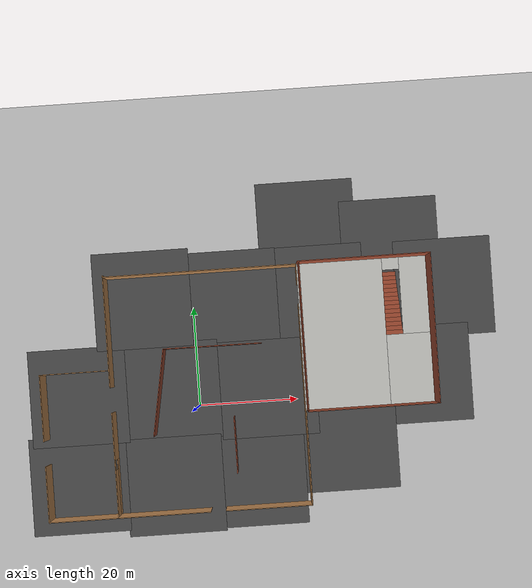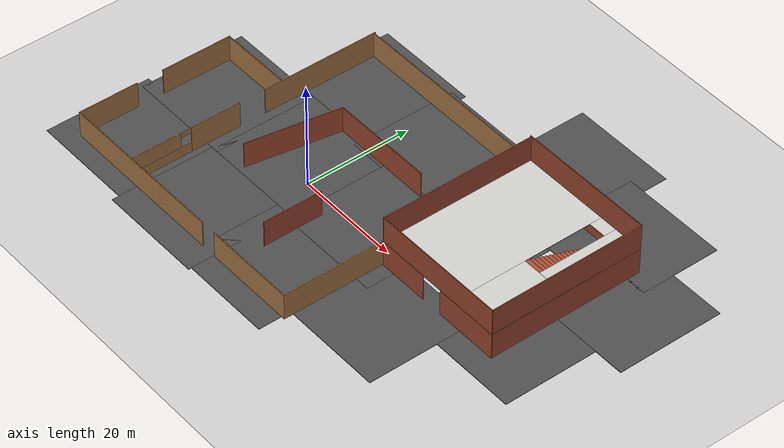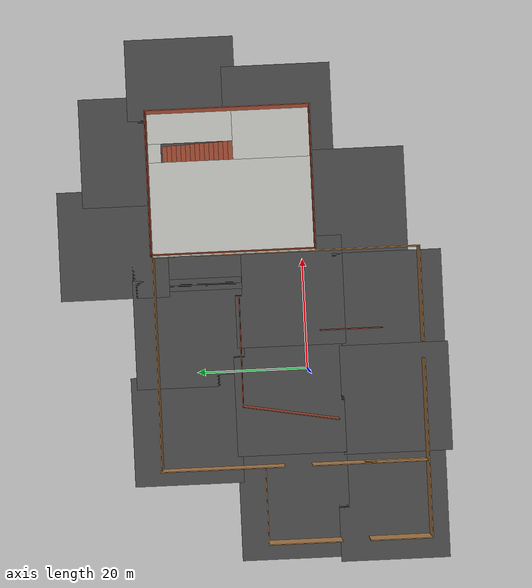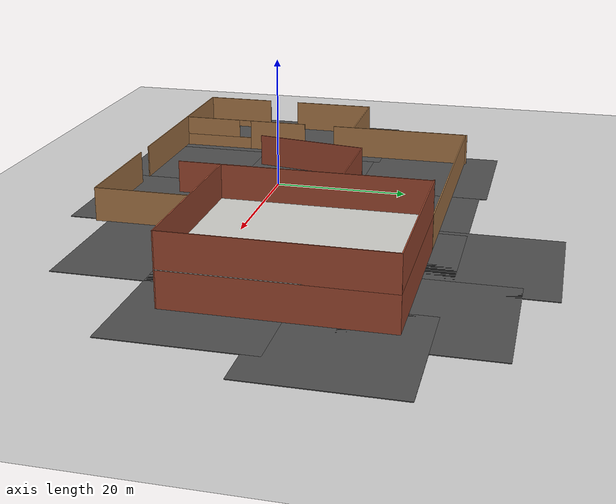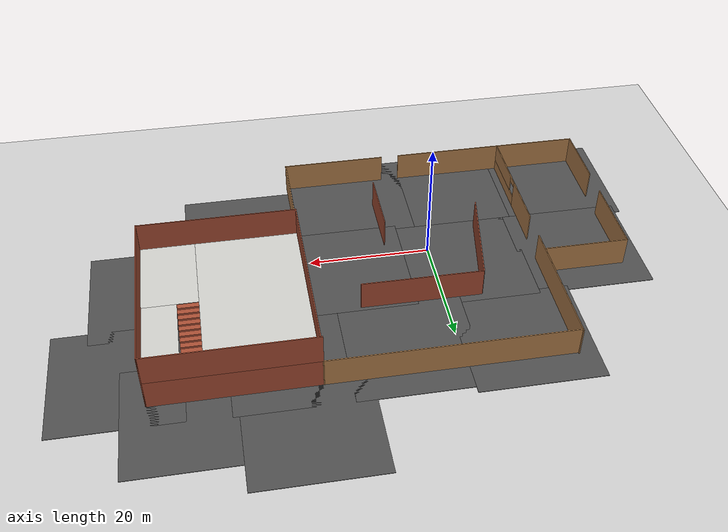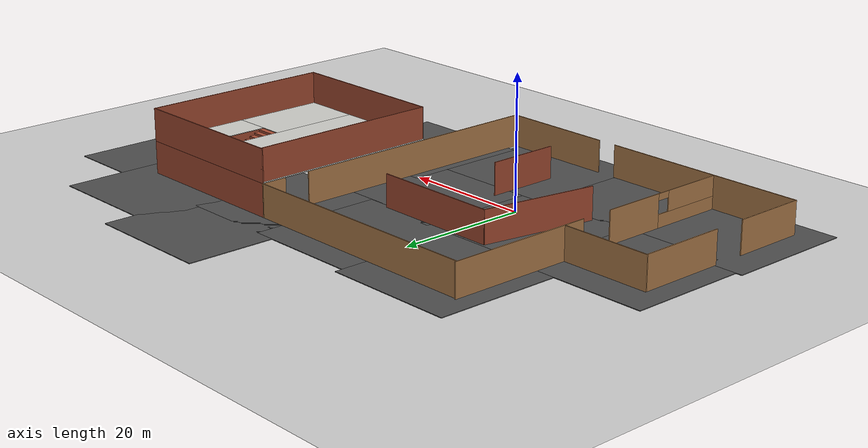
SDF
<sdf version="1.6">
 <world name="default">
  <light name="sun" type="directional">
   <pose>0 0 10 0 -0 0</pose>
   <diffuse>0.8 0.8 0.8 1</diffuse>
   <specular>0.2 0.2 0.2 1</specular>
   <attenuation>
    <range>1000</range>
    <constant>0.9</constant>
    <linear>0.01</linear>
    <quadratic>0.001</quadratic>
   </attenuation>
   <direction>-0.5 0.1 -0.9</direction>
  </light>
  <model name="ground_plane">
   <static>1</static>
   <link name="link">
    <collision name="collision">
     <geometry><plane><normal>0 0 1</normal><size>100 100</size></plane></geometry>
     <surface>
      <contact><collide_bitmask>65535</collide_bitmask></contact>
      <friction><ode><mu>100</mu><mu2>50</mu2></ode></friction>
     </surface>
    </collision>
    <visual name="visual">
     <cast_shadows>0</cast_shadows>
     <geometry><plane><normal>0 0 1</normal><size>100 100</size></plane></geometry>
     <material>
      <script><uri>file://media/materials/scripts/gazebo.material</uri><name>Gazebo/Grey</name></script>
     </material>
    </visual>
   </link>
  </model>
  <gravity>0 0 -9.8</gravity>
  <magnetic_field>6e-06 2.3e-05 -4.2e-05</magnetic_field>
  <atmosphere type="adiabatic"/>
  <physics name="default_physics" default="0" type="ode">
   <max_step_size>0.001</max_step_size>
   <real_time_factor>1</real_time_factor>
   <real_time_update_rate>1000</real_time_update_rate>
  </physics>
  <scene><ambient>0.4 0.4 0.4 1</ambient><background>0.7 0.7 0.7 1</background><shadows>1</shadows></scene>
  <audio><device>default</device></audio>
  <spherical_coordinates>
   <surface_model>EARTH_WGS84</surface_model>
   <latitude_deg>0</latitude_deg>
   <longitude_deg>0</longitude_deg>
   <elevation>0</elevation>
   <heading_deg>0</heading_deg>
  </spherical_coordinates>
  <model name="indoor_world_hoijo_v0.1">
   <pose>7.97263 3.142 0 0 -0 0</pose>
   <link name="Floor_3">
    <pose>26.425 9.3755 5 0 -0 0</pose>
    <visual name="Floor_3_Visual_0">
     <pose>-4.46641 0 0.05 0 -0 0</pose>
     <geometry><box><size>17.0672 29.5 0.1</size></box></geometry>
     <material>
      <script><uri>file://media/materials/scripts/gazebo.material</uri><name>Gazebo/CeilingTiled</name></script>
      <ambient>1 1 1 1</ambient>
     </material>
     <meta><layer>1</layer></meta>
    </visual>
    <collision name="Floor_3_Collision_0">
     <geometry><box><size>17.0672 29.5 0.1</size></box></geometry>
     <pose>-4.46641 0 0.05 0 -0 0</pose>
    </collision>
    <visual name="Floor_3_Visual_1">
     <pose>8.53359 -7.72437 0.05 0 -0 0</pose>
     <geometry><box><size>8.93283 14.0513 0.1</size></box></geometry>
     <material>
      <script><uri>file://media/materials/scripts/gazebo.material</uri><name>Gazebo/CeilingTiled</name></script>
      <ambient>1 1 1 1</ambient>
     </material>
     <meta><layer>1</layer></meta>
    </visual>
    <collision name="Floor_3_Collision_1">
     <geometry><box><size>8.93283 14.0513 0.1</size></box></geometry>
     <pose>8.53359 -7.72437 0.05 0 -0 0</pose>
    </collision>
    <visual name="Floor_3_Visual_2">
     <pose>10.2151 7.02563 0.05 0 -0 0</pose>
     <geometry><box><size>5.56983 15.4487 0.1</size></box></geometry>
     <material>
      <script><uri>file://media/materials/scripts/gazebo.material</uri><name>Gazebo/CeilingTiled</name></script>
      <ambient>1 1 1 1</ambient>
     </material>
     <meta><layer>1</layer></meta>
    </visual>
    <collision name="Floor_3_Collision_2">
     <geometry><box><size>5.56983 15.4487 0.1</size></box></geometry>
     <pose>10.2151 7.02563 0.05 0 -0 0</pose>
    </collision>
    <visual name="Floor_3_Visual_3">
     <pose>5.74867 13.5026 0.05 0 -0 0</pose>
     <geometry><box><size>3.363 2.49475 0.1</size></box></geometry>
     <material>
      <script><uri>file://media/materials/scripts/gazebo.material</uri><name>Gazebo/CeilingTiled</name></script>
      <ambient>1 1 1 1</ambient>
     </material>
     <meta><layer>1</layer></meta>
    </visual>
    <collision name="Floor_3_Collision_3">
     <geometry><box><size>3.363 2.49475 0.1</size></box></geometry>
     <pose>5.74867 13.5026 0.05 0 -0 0</pose>
    </collision>
   </link>
   <link name="Stairs_1">
    <visual name="Stairs_1_Visual_0">
     <pose>32.1737 21.199 0.166667 0 -0 0</pose>
     <geometry><box><size>3.363 0.8636 0.333333</size></box></geometry>
     <material>
      <script><uri>file://media/materials/scripts/gazebo.material</uri><name>Gazebo/Bricks</name></script>
      <ambient>1 1 1 1</ambient>
     </material>
     <meta><layer>0</layer></meta>
    </visual>
    <collision name="Stairs_1_Collision_0">
     <geometry><box><size>3.363 0.8636 0.333333</size></box></geometry>
     <pose>32.1737 21.199 0.166667 0 -0 0</pose>
    </collision>
    <visual name="Stairs_1_Visual_1">
     <pose>32.1737 20.3354 0.5 0 -0 0</pose>
     <geometry><box><size>3.363 0.8636 0.333333</size></box></geometry>
     <material>
      <script><uri>file://media/materials/scripts/gazebo.material</uri><name>Gazebo/Bricks</name></script>
      <ambient>1 1 1 1</ambient>
     </material>
     <meta><layer>0</layer></meta>
    </visual>
    <collision name="Stairs_1_Collision_1">
     <geometry><box><size>3.363 0.8636 0.333333</size></box></geometry>
     <pose>32.1737 20.3354 0.5 0 -0 0</pose>
    </collision>
    <visual name="Stairs_1_Visual_2">
     <pose>32.1737 19.4718 0.833333 0 -0 0</pose>
     <geometry><box><size>3.363 0.8636 0.333333</size></box></geometry>
     <material>
      <script><uri>file://media/materials/scripts/gazebo.material</uri><name>Gazebo/Bricks</name></script>
      <ambient>1 1 1 1</ambient>
     </material>
     <meta><layer>0</layer></meta>
    </visual>
    <collision name="Stairs_1_Collision_2">
     <geometry><box><size>3.363 0.8636 0.333333</size></box></geometry>
     <pose>32.1737 19.4718 0.833333 0 -0 0</pose>
    </collision>
    <visual name="Stairs_1_Visual_3">
     <pose>32.1737 18.6082 1.16667 0 -0 0</pose>
     <geometry><box><size>3.363 0.8636 0.333333</size></box></geometry>
     <material>
      <script><uri>file://media/materials/scripts/gazebo.material</uri><name>Gazebo/Bricks</name></script>
      <ambient>1 1 1 1</ambient>
     </material>
     <meta><layer>0</layer></meta>
    </visual>
    <collision name="Stairs_1_Collision_3">
     <geometry><box><size>3.363 0.8636 0.333333</size></box></geometry>
     <pose>32.1737 18.6082 1.16667 0 -0 0</pose>
    </collision>
    <visual name="Stairs_1_Visual_4">
     <pose>32.1737 17.7446 1.5 0 -0 0</pose>
     <geometry><box><size>3.363 0.8636 0.333333</size></box></geometry>
     <material>
      <script><uri>file://media/materials/scripts/gazebo.material</uri><name>Gazebo/Bricks</name></script>
      <ambient>1 1 1 1</ambient>
     </material>
     <meta><layer>0</layer></meta>
    </visual>
    <collision name="Stairs_1_Collision_4">
     <geometry><box><size>3.363 0.8636 0.333333</size></box></geometry>
     <pose>32.1737 17.7446 1.5 0 -0 0</pose>
    </collision>
    <visual name="Stairs_1_Visual_5">
     <pose>32.1737 16.881 1.83333 0 -0 0</pose>
     <geometry><box><size>3.363 0.8636 0.333333</size></box></geometry>
     <material>
      <script><uri>file://media/materials/scripts/gazebo.material</uri><name>Gazebo/Bricks</name></script>
      <ambient>1 1 1 1</ambient>
     </material>
     <meta><layer>0</layer></meta>
    </visual>
    <collision name="Stairs_1_Collision_5">
     <geometry><box><size>3.363 0.8636 0.333333</size></box></geometry>
     <pose>32.1737 16.881 1.83333 0 -0 0</pose>
    </collision>
    <visual name="Stairs_1_Visual_6">
     <pose>32.1737 16.0174 2.16667 0 -0 0</pose>
     <geometry><box><size>3.363 0.8636 0.333333</size></box></geometry>
     <material>
      <script><uri>file://media/materials/scripts/gazebo.material</uri><name>Gazebo/Bricks</name></script>
      <ambient>1 1 1 1</ambient>
     </material>
     <meta><layer>0</layer></meta>
    </visual>
    <collision name="Stairs_1_Collision_6">
     <geometry><box><size>3.363 0.8636 0.333333</size></box></geometry>
     <pose>32.1737 16.0174 2.16667 0 -0 0</pose>
    </collision>
    <visual name="Stairs_1_Visual_7">
     <pose>32.1737 15.1538 2.5 0 -0 0</pose>
     <geometry><box><size>3.363 0.8636 0.333333</size></box></geometry>
     <material>
      <script><uri>file://media/materials/scripts/gazebo.material</uri><name>Gazebo/Bricks</name></script>
      <ambient>1 1 1 1</ambient>
     </material>
     <meta><layer>0</layer></meta>
    </visual>
    <collision name="Stairs_1_Collision_7">
     <geometry><box><size>3.363 0.8636 0.333333</size></box></geometry>
     <pose>32.1737 15.1538 2.5 0 -0 0</pose>
    </collision>
    <visual name="Stairs_1_Visual_8">
     <pose>32.1737 14.2902 2.83333 0 -0 0</pose>
     <geometry><box><size>3.363 0.8636 0.333333</size></box></geometry>
     <material>
      <script><uri>file://media/materials/scripts/gazebo.material</uri><name>Gazebo/Bricks</name></script>
      <ambient>1 1 1 1</ambient>
     </material>
     <meta><layer>0</layer></meta>
    </visual>
    <collision name="Stairs_1_Collision_8">
     <geometry><box><size>3.363 0.8636 0.333333</size></box></geometry>
     <pose>32.1737 14.2902 2.83333 0 -0 0</pose>
    </collision>
    <visual name="Stairs_1_Visual_9">
     <pose>32.1737 13.4266 3.16667 0 -0 0</pose>
     <geometry><box><size>3.363 0.8636 0.333333</size></box></geometry>
     <material>
      <script><uri>file://media/materials/scripts/gazebo.material</uri><name>Gazebo/Bricks</name></script>
      <ambient>1 1 1 1</ambient>
     </material>
     <meta><layer>0</layer></meta>
    </visual>
    <collision name="Stairs_1_Collision_9">
     <geometry><box><size>3.363 0.8636 0.333333</size></box></geometry>
     <pose>32.1737 13.4266 3.16667 0 -0 0</pose>
    </collision>
    <visual name="Stairs_1_Visual_10">
     <pose>32.1737 12.563 3.5 0 -0 0</pose>
     <geometry><box><size>3.363 0.8636 0.333333</size></box></geometry>
     <material>
      <script><uri>file://media/materials/scripts/gazebo.material</uri><name>Gazebo/Bricks</name></script>
      <ambient>1 1 1 1</ambient>
     </material>
     <meta><layer>0</layer></meta>
    </visual>
    <collision name="Stairs_1_Collision_10">
     <geometry><box><size>3.363 0.8636 0.333333</size></box></geometry>
     <pose>32.1737 12.563 3.5 0 -0 0</pose>
    </collision>
    <visual name="Stairs_1_Visual_11">
     <pose>32.1737 11.6994 3.83333 0 -0 0</pose>
     <geometry><box><size>3.363 0.8636 0.333333</size></box></geometry>
     <material>
      <script><uri>file://media/materials/scripts/gazebo.material</uri><name>Gazebo/Bricks</name></script>
      <ambient>1 1 1 1</ambient>
     </material>
     <meta><layer>0</layer></meta>
    </visual>
    <collision name="Stairs_1_Collision_11">
     <geometry><box><size>3.363 0.8636 0.333333</size></box></geometry>
     <pose>32.1737 11.6994 3.83333 0 -0 0</pose>
    </collision>
    <visual name="Stairs_1_Visual_12">
     <pose>32.1737 10.8358 4.16667 0 -0 0</pose>
     <geometry><box><size>3.363 0.8636 0.333333</size></box></geometry>
     <material>
      <script><uri>file://media/materials/scripts/gazebo.material</uri><name>Gazebo/Bricks</name></script>
      <ambient>1 1 1 1</ambient>
     </material>
     <meta><layer>0</layer></meta>
    </visual>
    <collision name="Stairs_1_Collision_12">
     <geometry><box><size>3.363 0.8636 0.333333</size></box></geometry>
     <pose>32.1737 10.8358 4.16667 0 -0 0</pose>
    </collision>
    <visual name="Stairs_1_Visual_13">
     <pose>32.1737 9.97215 4.5 0 -0 0</pose>
     <geometry><box><size>3.363 0.8636 0.333333</size></box></geometry>
     <material>
      <script><uri>file://media/materials/scripts/gazebo.material</uri><name>Gazebo/Bricks</name></script>
      <ambient>1 1 1 1</ambient>
     </material>
     <meta><layer>0</layer></meta>
    </visual>
    <collision name="Stairs_1_Collision_13">
     <geometry><box><size>3.363 0.8636 0.333333</size></box></geometry>
     <pose>32.1737 9.97215 4.5 0 -0 0</pose>
    </collision>
    <visual name="Stairs_1_Visual_14">
     <pose>32.1737 9.10855 4.83333 0 -0 0</pose>
     <geometry><box><size>3.363 0.8636 0.333333</size></box></geometry>
     <material>
      <script><uri>file://media/materials/scripts/gazebo.material</uri><name>Gazebo/Bricks</name></script>
      <ambient>1 1 1 1</ambient>
     </material>
     <meta><layer>0</layer></meta>
    </visual>
    <collision name="Stairs_1_Collision_14">
     <geometry><box><size>3.363 0.8636 0.333333</size></box></geometry>
     <pose>32.1737 9.10855 4.83333 0 -0 0</pose>
    </collision>
   </link>
   <link name="Wall_31">
    <collision name="Wall_31_Collision">
     <geometry><box><size>14 0.15 5</size></box></geometry>
     <pose>0 0 2.5 0 -0 0</pose>
    </collision>
    <visual name="Wall_31_Visual">
     <pose>0 0 2.5 0 -0 0</pose>
     <geometry><box><size>14 0.15 5</size></box></geometry>
     <material>
      <script><uri>file://media/materials/scripts/gazebo.material</uri><name>Gazebo/Wood</name></script>
      <ambient>1 1 1 1</ambient>
     </material>
     <meta><layer>0</layer></meta>
    </visual>
    <pose>-32.425 5.3005 0 0 -0 3.14159</pose>
   </link>
   <link name="Wall_32">
    <pose>-39.35 -9.4995 0 0 -0 -1.5708</pose>
    <visual name="Wall_32_Visual_0">
     <pose>-8.16485 0 2.5 0 -0 0</pose>
     <geometry><box><size>13.4203 0.15 5</size></box></geometry>
     <material>
      <script><uri>file://media/materials/scripts/gazebo.material</uri><name>Gazebo/Wood</name></script>
      <ambient>1 1 1 1</ambient>
     </material>
     <meta><layer>0</layer></meta>
    </visual>
    <collision name="Wall_32_Collision_0">
     <geometry><box><size>13.4203 0.15 5</size></box></geometry>
     <pose>-8.16485 0 2.5 0 -0 0</pose>
    </collision>
    <visual name="Wall_32_Visual_1">
     <pose>9.21015 0 2.5 0 -0 0</pose>
     <geometry><box><size>11.3297 0.15 5</size></box></geometry>
     <material>
      <script><uri>file://media/materials/scripts/gazebo.material</uri><name>Gazebo/Wood</name></script>
      <ambient>1 1 1 1</ambient>
     </material>
     <meta><layer>0</layer></meta>
    </visual>
    <collision name="Wall_32_Collision_1">
     <geometry><box><size>11.3297 0.15 5</size></box></geometry>
     <pose>9.21015 0 2.5 0 -0 0</pose>
    </collision>
   </link>
   <link name="Wall_33">
    <pose>-12.925 -24.2995 0 0 -0 0</pose>
    <visual name="Wall_33_Visual_0">
     <pose>-10.2414 0 2.5 0 -0 0</pose>
     <geometry><box><size>32.5172 0.15 5</size></box></geometry>
     <material>
      <script><uri>file://media/materials/scripts/gazebo.material</uri><name>Gazebo/Wood</name></script>
      <ambient>1 1 1 1</ambient>
     </material>
     <meta><layer>0</layer></meta>
    </visual>
    <collision name="Wall_33_Collision_0">
     <geometry><box><size>32.5172 0.15 5</size></box></geometry>
     <pose>-10.2414 0 2.5 0 -0 0</pose>
    </collision>
    <visual name="Wall_33_Visual_1">
     <pose>17.7586 0 2.5 0 -0 0</pose>
     <geometry><box><size>17.4828 0.15 5</size></box></geometry>
     <material>
      <script><uri>file://media/materials/scripts/gazebo.material</uri><name>Gazebo/Wood</name></script>
      <ambient>1 1 1 1</ambient>
     </material>
     <meta><layer>0</layer></meta>
    </visual>
    <collision name="Wall_33_Collision_1">
     <geometry><box><size>17.4828 0.15 5</size></box></geometry>
     <pose>17.7586 0 2.5 0 -0 0</pose>
    </collision>
   </link>
   <link name="Wall_34">
    <pose>13.5 -0.1245 0 0 -0 1.5708</pose>
    <visual name="Wall_34_Visual_0">
     <pose>-3.94993 0 2.5 0 -0 0</pose>
     <geometry><box><size>40.6001 0.15 5</size></box></geometry>
     <material>
      <script><uri>file://media/materials/scripts/gazebo.material</uri><name>Gazebo/Wood</name></script>
      <ambient>1 1 1 1</ambient>
     </material>
     <meta><layer>0</layer></meta>
    </visual>
    <collision name="Wall_34_Collision_0">
     <geometry><box><size>40.6001 0.15 5</size></box></geometry>
     <pose>-3.94993 0 2.5 0 -0 0</pose>
    </collision>
    <visual name="Wall_34_Visual_1">
     <pose>22.3001 0 2.5 0 -0 0</pose>
     <geometry><box><size>3.89986 0.15 5</size></box></geometry>
     <material>
      <script><uri>file://media/materials/scripts/gazebo.material</uri><name>Gazebo/Wood</name></script>
      <ambient>1 1 1 1</ambient>
     </material>
     <meta><layer>0</layer></meta>
    </visual>
    <collision name="Wall_34_Collision_1">
     <geometry><box><size>3.89986 0.15 5</size></box></geometry>
     <pose>22.3001 0 2.5 0 -0 0</pose>
    </collision>
   </link>
   <link name="Wall_35">
    <collision name="Wall_35_Collision">
     <geometry><box><size>39 0.15 5</size></box></geometry>
     <pose>0 0 2.5 0 -0 0</pose>
    </collision>
    <visual name="Wall_35_Visual">
     <pose>0 0 2.5 0 -0 0</pose>
     <geometry><box><size>39 0.15 5</size></box></geometry>
     <material>
      <script><uri>file://media/materials/scripts/gazebo.material</uri><name>Gazebo/Wood</name></script>
      <ambient>1 1 1 1</ambient>
     </material>
     <meta><layer>0</layer></meta>
    </visual>
    <pose>-5.925 24.0505 0 0 -0 3.14159</pose>
   </link>
   <link name="Wall_55">
    <pose>-25.412 0.1245 0 0 -0 -1.5708</pose>
    <visual name="Wall_55_Visual_0">
     <pose>-12.9783 0 2.5 0 -0 0</pose>
     <geometry><box><size>22.5434 0.15 5</size></box></geometry>
     <material>
      <script><uri>file://media/materials/scripts/gazebo.material</uri><name>Gazebo/Wood</name></script>
      <ambient>1 1 1 1</ambient>
     </material>
     <meta><layer>0</layer></meta>
    </visual>
    <collision name="Wall_55_Collision_0">
     <geometry><box><size>22.5434 0.15 5</size></box></geometry>
     <pose>-12.9783 0 2.5 0 -0 0</pose>
    </collision>
    <visual name="Wall_55_Visual_1">
     <pose>8.08698 0 2.5 0 -0 0</pose>
     <geometry><box><size>9.58726 0.15 5</size></box></geometry>
     <material>
      <script><uri>file://media/materials/scripts/gazebo.material</uri><name>Gazebo/Wood</name></script>
      <ambient>1 1 1 1</ambient>
     </material>
     <meta><layer>0</layer></meta>
    </visual>
    <collision name="Wall_55_Collision_1">
     <geometry><box><size>9.58726 0.15 5</size></box></geometry>
     <pose>8.08698 0 2.5 0 -0 0</pose>
    </collision>
    <visual name="Wall_55_Visual_2">
     <pose>18.5653 0 1 0 -0 0</pose>
     <geometry><box><size>11.3694 0.15 2</size></box></geometry>
     <material>
      <script><uri>file://media/materials/scripts/gazebo.material</uri><name>Gazebo/Wood</name></script>
      <ambient>1 1 1 1</ambient>
     </material>
     <meta><layer>0</layer></meta>
    </visual>
    <collision name="Wall_55_Collision_2">
     <geometry><box><size>11.3694 0.15 2</size></box></geometry>
     <pose>18.5653 0 1 0 -0 0</pose>
    </collision>
    <visual name="Wall_55_Visual_3">
     <pose>19.5653 0 3.5 0 -0 0</pose>
     <geometry><box><size>9.36939 0.15 3</size></box></geometry>
     <material>
      <script><uri>file://media/materials/scripts/gazebo.material</uri><name>Gazebo/Wood</name></script>
      <ambient>1 1 1 1</ambient>
     </material>
     <meta><layer>0</layer></meta>
    </visual>
    <collision name="Wall_55_Collision_3">
     <geometry><box><size>9.36939 0.15 3</size></box></geometry>
     <pose>19.5653 0 3.5 0 -0 0</pose>
    </collision>
    <visual name="Wall_55_Visual_4">
     <pose>13.8806 0 4.5 0 -0 0</pose>
     <geometry><box><size>2 0.15 1</size></box></geometry>
     <material>
      <script><uri>file://media/materials/scripts/gazebo.material</uri><name>Gazebo/Wood</name></script>
      <ambient>1 1 1 1</ambient>
     </material>
     <meta><layer>0</layer></meta>
    </visual>
    <collision name="Wall_55_Collision_4">
     <geometry><box><size>2 0.15 1</size></box></geometry>
     <pose>13.8806 0 4.5 0 -0 0</pose>
    </collision>
   </link>
   <link name="Wall_57">
    <collision name="Wall_57_Collision">
     <geometry><box><size>26 0.15 5</size></box></geometry>
     <pose>0 0 2.5 0 -0 0</pose>
    </collision>
    <visual name="Wall_57_Visual">
     <pose>0 0 2.5 0 -0 0</pose>
     <geometry><box><size>26 0.15 5</size></box></geometry>
     <material>
      <script><uri>file://media/materials/scripts/gazebo.material</uri><name>Gazebo/Bricks</name></script>
      <ambient>1 1 1 1</ambient>
     </material>
     <meta><layer>0</layer></meta>
    </visual>
    <pose>26.425 24.0505 0 0 -0 0</pose>
   </link>
   <link name="Wall_58">
    <collision name="Wall_58_Collision">
     <geometry><box><size>29.5 0.15 5</size></box></geometry>
     <pose>0 0 2.5 0 -0 0</pose>
    </collision>
    <visual name="Wall_58_Visual">
     <pose>0 0 2.5 0 -0 0</pose>
     <geometry><box><size>29.5 0.15 5</size></box></geometry>
     <material>
      <script><uri>file://media/materials/scripts/gazebo.material</uri><name>Gazebo/Bricks</name></script>
      <ambient>1 1 1 1</ambient>
     </material>
     <meta><layer>0</layer></meta>
    </visual>
    <pose>39.35 9.3755 0 0 -0 -1.5708</pose>
   </link>
   <link name="Wall_59">
    <pose>26.55 -5.2995 0 0 -0 3.14159</pose>
    <visual name="Wall_59_Visual_0">
     <pose>-6.81937 0 2.5 0 -0 0</pose>
     <geometry><box><size>12.1113 0.15 5</size></box></geometry>
     <material>
      <script><uri>file://media/materials/scripts/gazebo.material</uri><name>Gazebo/Bricks</name></script>
      <ambient>1 1 1 1</ambient>
     </material>
     <meta><layer>0</layer></meta>
    </visual>
    <collision name="Wall_59_Collision_0">
     <geometry><box><size>12.1113 0.15 5</size></box></geometry>
     <pose>-6.81937 0 2.5 0 -0 0</pose>
    </collision>
    <visual name="Wall_59_Visual_1">
     <pose>8.05563 0 2.5 0 -0 0</pose>
     <geometry><box><size>9.63875 0.15 5</size></box></geometry>
     <material>
      <script><uri>file://media/materials/scripts/gazebo.material</uri><name>Gazebo/Bricks</name></script>
      <ambient>1 1 1 1</ambient>
     </material>
     <meta><layer>0</layer></meta>
    </visual>
    <collision name="Wall_59_Collision_1">
     <geometry><box><size>9.63875 0.15 5</size></box></geometry>
     <pose>8.05563 0 2.5 0 -0 0</pose>
    </collision>
   </link>
   <link name="Wall_67">
    <collision name="Wall_67_Collision">
     <geometry><box><size>26 0.15 5</size></box></geometry>
     <pose>0 0 2.5 0 -0 0</pose>
    </collision>
    <visual name="Wall_67_Visual">
     <pose>0 0 2.5 0 -0 0</pose>
     <geometry><box><size>26 0.15 5</size></box></geometry>
     <material>
      <script><uri>file://media/materials/scripts/gazebo.material</uri><name>Gazebo/Bricks</name></script>
      <ambient>1 1 1 1</ambient>
     </material>
     <meta><layer>1</layer></meta>
    </visual>
    <pose>26.425 24.0505 5 0 -0 0</pose>
   </link>
   <link name="Wall_68">
    <collision name="Wall_68_Collision">
     <geometry><box><size>29.5 0.15 5</size></box></geometry>
     <pose>0 0 2.5 0 -0 0</pose>
    </collision>
    <visual name="Wall_68_Visual">
     <pose>0 0 2.5 0 -0 0</pose>
     <geometry><box><size>29.5 0.15 5</size></box></geometry>
     <material>
      <script><uri>file://media/materials/scripts/gazebo.material</uri><name>Gazebo/Bricks</name></script>
      <ambient>1 1 1 1</ambient>
     </material>
     <meta><layer>1</layer></meta>
    </visual>
    <pose>39.35 9.3755 5 0 -0 -1.5708</pose>
   </link>
   <link name="Wall_69">
    <collision name="Wall_69_Collision">
     <geometry><box><size>25.75 0.15 5</size></box></geometry>
     <pose>0 0 2.5 0 -0 0</pose>
    </collision>
    <visual name="Wall_69_Visual">
     <pose>0 0 2.5 0 -0 0</pose>
     <geometry><box><size>25.75 0.15 5</size></box></geometry>
     <material>
      <script><uri>file://media/materials/scripts/gazebo.material</uri><name>Gazebo/Bricks</name></script>
      <ambient>1 1 1 1</ambient>
     </material>
     <meta><layer>1</layer></meta>
    </visual>
    <pose>26.55 -5.2995 5 0 -0 3.14159</pose>
   </link>
   <link name="Wall_70">
    <collision name="Wall_70_Collision">
     <geometry><box><size>29.5 0.15 5</size></box></geometry>
     <pose>0 0 2.5 0 -0 0</pose>
    </collision>
    <visual name="Wall_70_Visual">
     <pose>0 0 2.5 0 -0 0</pose>
     <geometry><box><size>29.5 0.15 5</size></box></geometry>
     <material>
      <script><uri>file://media/materials/scripts/gazebo.material</uri><name>Gazebo/Bricks</name></script>
      <ambient>1 1 1 1</ambient>
     </material>
     <meta><layer>1</layer></meta>
    </visual>
    <pose>13.75 9.3755 5 0 -0 1.5708</pose>
   </link>
   <static>1</static>
  </model>
  <model name="asphalt_plane">
   <static>1</static>
   <link name="link">
    <collision name="collision"><geometry><box><size>20 20 0.1</size></box></geometry></collision>
    <visual name="visual">
     <cast_shadows>0</cast_shadows>
     <geometry><box><size>20 20 0.1</size></box></geometry>
     <material>
      <script>
       <uri>model://asphalt_plane/materials/scripts</uri>
       <uri>model://asphalt_plane/materials/textures</uri>
       <name>vrc/asphalt</name>
      </script>
     </material>
    </visual>
   </link>
   <pose>-10.4567 22.4779 0 0 -0 0</pose>
  </model>
  <model name="asphalt_plane_clone">
   <static>1</static>
   <link name="link">
    <collision name="collision"><geometry><box><size>20 20 0.1</size></box></geometry></collision>
    <visual name="visual">
     <cast_shadows>0</cast_shadows>
     <geometry><box><size>20 20 0.1</size></box></geometry>
     <material>
      <script>
       <uri>model://asphalt_plane/materials/scripts</uri>
       <uri>model://asphalt_plane/materials/textures</uri>
       <name>vrc/asphalt</name>
      </script>
     </material>
    </visual>
   </link>
   <pose>-24.8757 3.39741 0 0 -0 0</pose>
  </model>
  <model name="asphalt_plane_clone_0">
   <static>1</static>
   <link name="link">
    <collision name="collision"><geometry><box><size>20 20 0.1</size></box></geometry></collision>
    <visual name="visual">
     <cast_shadows>0</cast_shadows>
     <geometry><box><size>20 20 0.1</size></box></geometry>
     <material>
      <script>
       <uri>model://asphalt_plane/materials/scripts</uri>
       <uri>model://asphalt_plane/materials/textures</uri>
       <name>vrc/asphalt</name>
      </script>
     </material>
    </visual>
   </link>
   <pose>-25.8155 -14.7047 0 0 -0 0</pose>
  </model>
  <model name="asphalt_plane_clone_1">
   <static>1</static>
   <link name="link">
    <collision name="collision"><geometry><box><size>20 20 0.1</size></box></geometry></collision>
    <visual name="visual">
     <cast_shadows>0</cast_shadows>
     <geometry><box><size>20 20 0.1</size></box></geometry>
     <material>
      <script>
       <uri>model://asphalt_plane/materials/scripts</uri>
       <uri>model://asphalt_plane/materials/textures</uri>
       <name>vrc/asphalt</name>
      </script>
     </material>
    </visual>
   </link>
   <pose>-6.18066 -16.037 0 0 -0 0</pose>
  </model>
  <model name="asphalt_plane_clone_2">
   <static>1</static>
   <link name="link">
    <collision name="collision"><geometry><box><size>20 20 0.1</size></box></geometry></collision>
    <visual name="visual">
     <cast_shadows>0</cast_shadows>
     <geometry><box><size>20 20 0.1</size></box></geometry>
     <material>
      <script>
       <uri>model://asphalt_plane/materials/scripts</uri>
       <uri>model://asphalt_plane/materials/textures</uri>
       <name>vrc/asphalt</name>
      </script>
     </material>
    </visual>
   </link>
   <pose>-5.70974 3.43135 0 0 -0 0</pose>
  </model>
  <model name="asphalt_plane_clone_3">
   <static>1</static>
   <link name="link">
    <collision name="collision"><geometry><box><size>20 20 0.1</size></box></geometry></collision>
    <visual name="visual">
     <cast_shadows>0</cast_shadows>
     <geometry><box><size>20 20 0.1</size></box></geometry>
     <material>
      <script>
       <uri>model://asphalt_plane/materials/scripts</uri>
       <uri>model://asphalt_plane/materials/textures</uri>
       <name>vrc/asphalt</name>
      </script>
     </material>
    </visual>
   </link>
   <pose>14.2018 2.65278 0 0 -0 0</pose>
  </model>
  <model name="asphalt_plane_clone_4">
   <static>1</static>
   <link name="link">
    <collision name="collision"><geometry><box><size>20 20 0.1</size></box></geometry></collision>
    <visual name="visual">
     <cast_shadows>0</cast_shadows>
     <geometry><box><size>20 20 0.1</size></box></geometry>
     <material>
      <script>
       <uri>model://asphalt_plane/materials/scripts</uri>
       <uri>model://asphalt_plane/materials/textures</uri>
       <name>vrc/asphalt</name>
      </script>
     </material>
    </visual>
   </link>
   <pose>7.37233 21.387 0 0 -0 0</pose>
  </model>
  <model name="asphalt_plane_clone_5">
   <static>1</static>
   <link name="link">
    <collision name="collision"><geometry><box><size>20 20 0.1</size></box></geometry></collision>
    <visual name="visual">
     <cast_shadows>0</cast_shadows>
     <geometry><box><size>20 20 0.1</size></box></geometry>
     <material>
      <script>
       <uri>model://asphalt_plane/materials/scripts</uri>
       <uri>model://asphalt_plane/materials/textures</uri>
       <name>vrc/asphalt</name>
      </script>
     </material>
    </visual>
   </link>
   <pose>25.1556 21.2922 0 0 -0 0</pose>
  </model>
  <model name="asphalt_plane_clone_6">
   <static>1</static>
   <link name="link">
    <collision name="collision"><geometry><box><size>20 20 0.1</size></box></geometry></collision>
    <visual name="visual">
     <cast_shadows>0</cast_shadows>
     <geometry><box><size>20 20 0.1</size></box></geometry>
     <material>
      <script>
       <uri>model://asphalt_plane/materials/scripts</uri>
       <uri>model://asphalt_plane/materials/textures</uri>
       <name>vrc/asphalt</name>
      </script>
     </material>
    </visual>
   </link>
   <pose>10.8474 -15.5137 0 0 -0 0</pose>
  </model>
  <model name="asphalt_plane_clone_7">
   <static>1</static>
   <link name="link">
    <collision name="collision"><geometry><box><size>20 20 0.1</size></box></geometry></collision>
    <visual name="visual">
     <cast_shadows>0</cast_shadows>
     <geometry><box><size>20 20 0.1</size></box></geometry>
     <material>
      <script>
       <uri>model://asphalt_plane/materials/scripts</uri>
       <uri>model://asphalt_plane/materials/textures</uri>
       <name>vrc/asphalt</name>
      </script>
     </material>
    </visual>
   </link>
   <pose>30.0332 -9.48348 0 0 -0 0</pose>
  </model>
  <model name="asphalt_plane_clone_8">
   <static>1</static>
   <link name="link">
    <collision name="collision"><geometry><box><size>20 20 0.1</size></box></geometry></collision>
    <visual name="visual">
     <cast_shadows>0</cast_shadows>
     <geometry><box><size>20 20 0.1</size></box></geometry>
     <material>
      <script>
       <uri>model://asphalt_plane/materials/scripts</uri>
       <uri>model://asphalt_plane/materials/textures</uri>
       <name>vrc/asphalt</name>
      </script>
     </material>
    </visual>
   </link>
   <pose>46.0455 3.39467 0 0 -0 0</pose>
  </model>
  <model name="asphalt_plane_clone_9">
   <static>1</static>
   <link name="link">
    <collision name="collision"><geometry><box><size>20 20 0.1</size></box></geometry></collision>
    <visual name="visual">
     <cast_shadows>0</cast_shadows>
     <geometry><box><size>20 20 0.1</size></box></geometry>
     <material>
      <script>
       <uri>model://asphalt_plane/materials/scripts</uri>
       <uri>model://asphalt_plane/materials/textures</uri>
       <name>vrc/asphalt</name>
      </script>
     </material>
    </visual>
   </link>
   <pose>51.661 20.9455 0 0 -0 0</pose>
  </model>
  <model name="asphalt_plane_clone_10">
   <static>1</static>
   <link name="link">
    <collision name="collision"><geometry><box><size>20 20 0.1</size></box></geometry></collision>
    <visual name="visual">
     <cast_shadows>0</cast_shadows>
     <geometry><box><size>20 20 0.1</size></box></geometry>
     <material>
      <script>
       <uri>model://asphalt_plane/materials/scripts</uri>
       <uri>model://asphalt_plane/materials/textures</uri>
       <name>vrc/asphalt</name>
      </script>
     </material>
    </visual>
   </link>
   <pose>41.1419 29.908 0 0 -0 0</pose>
  </model>
  <model name="asphalt_plane_clone_11">
   <static>1</static>
   <link name="link">
    <collision name="collision"><geometry><box><size>20 20 0.1</size></box></geometry></collision>
    <visual name="visual">
     <cast_shadows>0</cast_shadows>
     <geometry><box><size>20 20 0.1</size></box></geometry>
     <material>
      <script>
       <uri>model://asphalt_plane/materials/scripts</uri>
       <uri>model://asphalt_plane/materials/textures</uri>
       <name>vrc/asphalt</name>
      </script>
     </material>
    </visual>
   </link>
   <pose>24.1911 34.5949 0 0 -0 0</pose>
  </model>
  <model name="indoor_world_hoijo_v0.2">
   <pose>2.0054 -0.867304 0 0 -0 0</pose>
   <link name="Wall_0">
    <collision name="Wall_0_Collision">
     <geometry><box><size>17.7629 0.15 5</size></box></geometry>
     <pose>0 0 2.5 0 -0 0</pose>
    </collision>
    <visual name="Wall_0_Visual">
     <pose>0 0 2.5 0 -0 0</pose>
     <geometry><box><size>17.7629 0.15 5</size></box></geometry>
     <material>
      <script><uri>file://media/materials/scripts/gazebo.material</uri><name>Gazebo/Bricks</name></script>
      <ambient>1 1 1 1</ambient>
     </material>
     <meta><layer>0</layer></meta>
    </visual>
    <pose>-9.8319 4.2263 0 0 -0 1.39889</pose>
   </link>
   <link name="Wall_1">
    <collision name="Wall_1_Collision">
     <geometry><box><size>19.8254 0.15 5</size></box></geometry>
     <pose>0 0 2.5 0 -0 0</pose>
    </collision>
    <visual name="Wall_1_Visual">
     <pose>0 0 2.5 0 -0 0</pose>
     <geometry><box><size>19.8254 0.15 5</size></box></geometry>
     <material>
      <script><uri>file://media/materials/scripts/gazebo.material</uri><name>Gazebo/Bricks</name></script>
      <ambient>1 1 1 1</ambient>
     </material>
     <meta><layer>0</layer></meta>
    </visual>
    <pose>1.5121 12.8493 0 0 -0 -0.005489</pose>
   </link>
   <link name="Wall_3">
    <collision name="Wall_3_Collision">
     <geometry><box><size>11.25 0.15 5</size></box></geometry>
     <pose>0 0 2.5 0 -0 0</pose>
    </collision>
    <visual name="Wall_3_Visual">
     <pose>0 0 2.5 0 -0 0</pose>
     <geometry><box><size>11.25 0.15 5</size></box></geometry>
     <material>
      <script><uri>file://media/materials/scripts/gazebo.material</uri><name>Gazebo/Bricks</name></script>
      <ambient>1 1 1 1</ambient>
     </material>
     <meta><layer>0</layer></meta>
    </visual>
    <pose>4.9096 -7.3647 0 0 -0 -1.5708</pose>
   </link>
   <static>1</static>
  </model>
  <include><uri>model://sun</uri></include>
  <light name="sun" type="directional">
   <pose>0 0 10 0 -0 0</pose>
   <diffuse>0.8 0.8 0.8 1</diffuse>
   <specular>0.2 0.2 0.2 1</specular>
   <attenuation>
    <range>1000</range>
    <constant>0.9</constant>
    <linear>0.01</linear>
    <quadratic>0.001</quadratic>
   </attenuation>
   <direction>-0.5 0.1 -0.9</direction>
  </light>
  <physics name="default_physics" default="0" type="ode">
   <gravity>0 0 -9.8066</gravity>
   <ode>
    <solver>
     <type>quick</type>
     <iters>10</iters>
     <sor>1.0</sor>
     <use_dynamic_moi_rescaling>0</use_dynamic_moi_rescaling>
    </solver>
    <constraints>
     <cfm>0</cfm>
     <erp>0.2</erp>
     <contact_max_correcting_vel>100</contact_max_correcting_vel>
     <contact_surface_layer>0.001</contact_surface_layer>
    </constraints>
   </ode>
   <max_step_size>0.004</max_step_size>
   <real_time_factor>1</real_time_factor>
   <real_time_update_rate>250</real_time_update_rate>
   <magnetic_field>6e-06 2.3e-05 -4.2e-05</magnetic_field>
  </physics>
 </world>
</sdf>
